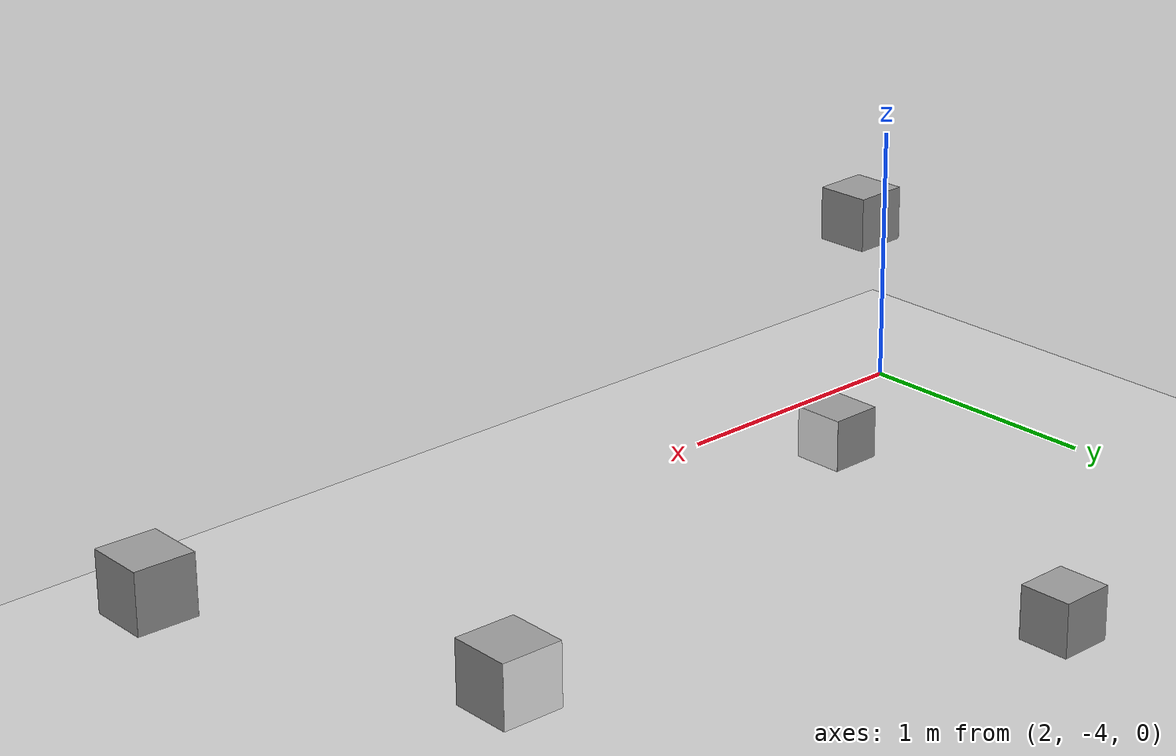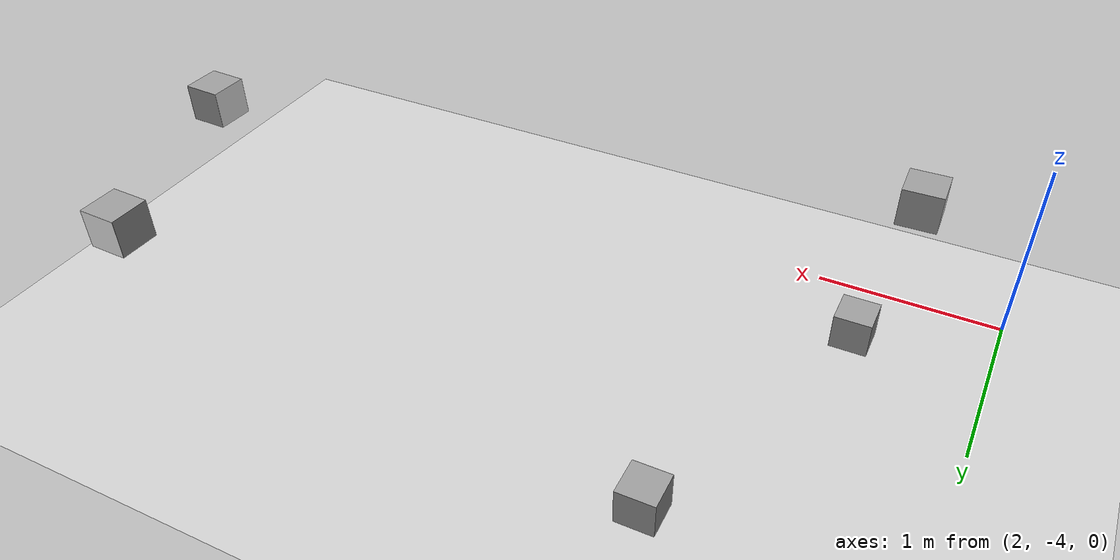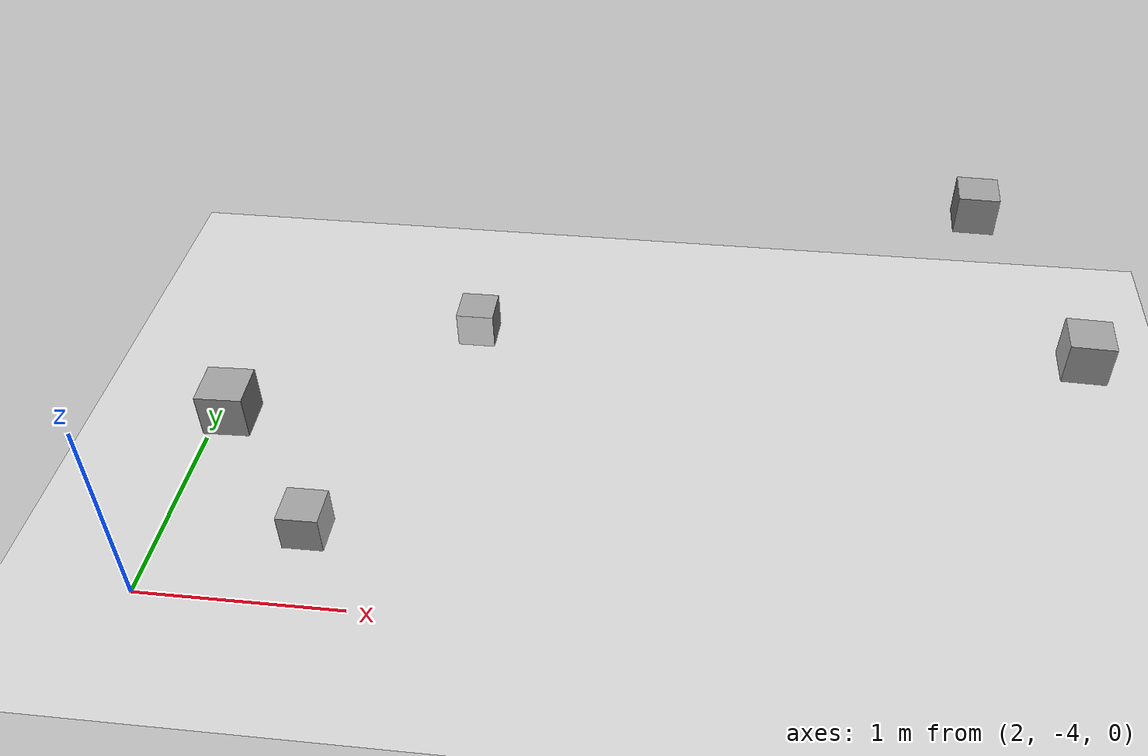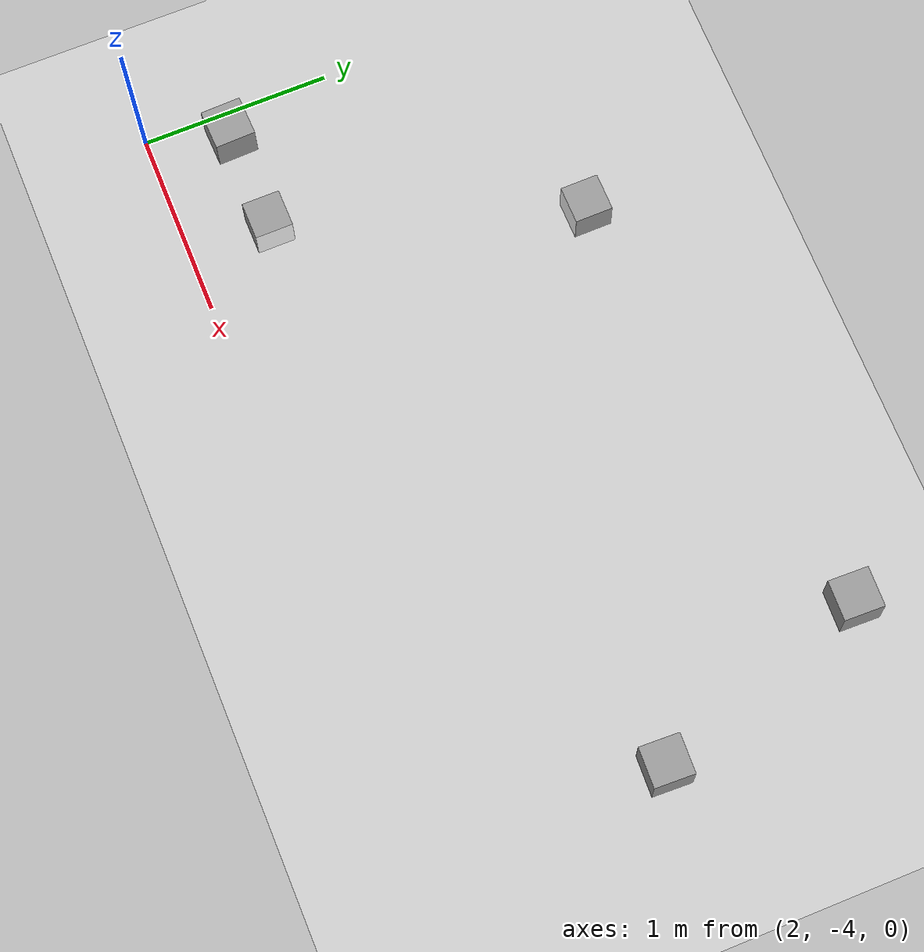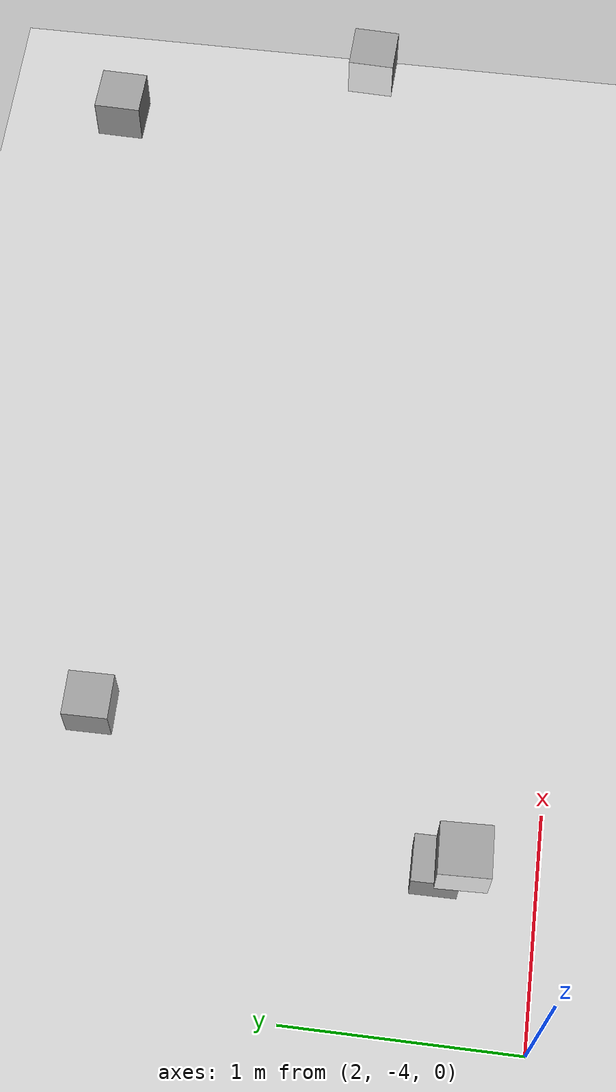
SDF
<sdf version="1.7">
 <world name="default">
  <model name="ground_plane">
   <static>1</static>
   <link name="link">
    <collision name="collision">
     <geometry><plane><normal>0 0 1</normal><size>100 100</size></plane></geometry>
     <surface>
      <contact><collide_bitmask>65535</collide_bitmask></contact>
      <friction><ode><mu>100</mu><mu2>50</mu2></ode></friction>
     </surface>
    </collision>
    <visual name="visual">
     <cast_shadows>0</cast_shadows>
     <geometry><plane><normal>0 0 1</normal><size>100 100</size></plane></geometry>
     <material>
      <script><uri>file://media/materials/scripts/gazebo.material</uri><name>Gazebo/Grey</name></script>
     </material>
    </visual>
   </link>
  </model>
  <model name="marker15_box">
   <link name="marker">
    <inertial>
     <mass>0.1</mass>
     <inertia><ixx>0</ixx><ixy>0</ixy><ixz>0</ixz><iyy>0</iyy><iyz>0</iyz><izz>0</izz></inertia>
    </inertial>
    <self_collide>1</self_collide>
    <pose>-0.76428 -0.101106 0.120004 -0.015494 1.56996 -0.015507</pose>
    <visual name="visual">
     <geometry><box><size>0.2 0.2 0.001</size></box></geometry>
     <material>
      <script>
       <uri>model://marker15/material/scripts</uri>
       <uri>model://marker15/material/textures</uri>
       <name>Aruco/marker15</name>
      </script>
      <shader type="pixel"><normal_map>__default__</normal_map></shader>
      <emissive>0 0 0 1</emissive>
      <ambient>1 1 1 1</ambient>
      <diffuse>1 1 1 1</diffuse>
      <specular>0 0 0 1</specular>
     </material>
    </visual>
    <collision name="collision">
     <geometry><box><size>0.2 0.2 0.02</size></box></geometry>
     <surface>
      <friction>
       <ode><mu>1</mu><mu2>1</mu2><fdir1>0 0 0</fdir1><slip1>0</slip1><slip2>0</slip2></ode>
       <torsional>
        <coefficient>1</coefficient>
        <patch_radius>0</patch_radius>
        <surface_radius>0</surface_radius>
        <use_patch_radius>1</use_patch_radius>
        <ode><slip>0</slip></ode>
       </torsional>
      </friction>
      <bounce><restitution_coefficient>0</restitution_coefficient><threshold>1e+06</threshold></bounce>
      <contact>
       <collide_without_contact>0</collide_without_contact>
       <collide_without_contact_bitmask>1</collide_without_contact_bitmask>
       <collide_bitmask>1</collide_bitmask>
       <ode>
        <soft_cfm>0</soft_cfm>
        <soft_erp>0.2</soft_erp>
        <kp>1e+13</kp>
        <kd>1</kd>
        <max_vel>0.01</max_vel>
        <min_depth>0</min_depth>
       </ode>
       <bullet>
        <split_impulse>1</split_impulse>
        <split_impulse_penetration_threshold>-0.01</split_impulse_penetration_threshold>
        <soft_cfm>0</soft_cfm>
        <soft_erp>0.2</soft_erp>
        <kp>1e+13</kp>
        <kd>1</kd>
       </bullet>
      </contact>
     </surface>
    </collision>
   </link>
   <link name="link_1">
    <inertial>
     <mass>1</mass>
     <inertia>
      <ixx>0.166667</ixx>
      <ixy>0</ixy>
      <ixz>0</ixz>
      <iyy>0.166667</iyy>
      <iyz>0</iyz>
      <izz>0.166667</izz>
     </inertia>
    </inertial>
    <pose>-0.86428 -0.101106 0.12 -1.3e-05 -4.2e-05 0</pose>
    <visual name="visual">
     <geometry><box><size>0.2 0.2 0.2</size></box></geometry>
     <material>
      <lighting>1</lighting>
      <script><uri>file://media/materials/scripts/gazebo.material</uri><name>Gazebo/Grey</name></script>
      <shader type="pixel"><normal_map>__default__</normal_map></shader>
      <emissive>0 0 0 1</emissive>
      <ambient>0.3 0.3 0.3 1</ambient>
      <diffuse>0.7 0.7 0.7 1</diffuse>
      <specular>0.01 0.01 0.01 1</specular>
     </material>
    </visual>
    <collision name="collision">
     <geometry><box><size>0.2 0.2 0.2</size></box></geometry>
     <surface>
      <friction>
       <ode><mu>1</mu><mu2>1</mu2><fdir1>0 0 0</fdir1><slip1>0</slip1><slip2>0</slip2></ode>
       <torsional>
        <coefficient>1</coefficient>
        <patch_radius>0</patch_radius>
        <surface_radius>0</surface_radius>
        <use_patch_radius>1</use_patch_radius>
        <ode><slip>0</slip></ode>
       </torsional>
      </friction>
      <bounce><restitution_coefficient>0</restitution_coefficient><threshold>1e+06</threshold></bounce>
      <contact>
       <collide_without_contact>0</collide_without_contact>
       <collide_without_contact_bitmask>1</collide_without_contact_bitmask>
       <collide_bitmask>1</collide_bitmask>
       <ode>
        <soft_cfm>0</soft_cfm>
        <soft_erp>0.2</soft_erp>
        <kp>1e+13</kp>
        <kd>1</kd>
        <max_vel>0.01</max_vel>
        <min_depth>0</min_depth>
       </ode>
       <bullet>
        <split_impulse>1</split_impulse>
        <split_impulse_penetration_threshold>-0.01</split_impulse_penetration_threshold>
        <soft_cfm>0</soft_cfm>
        <soft_erp>0.2</soft_erp>
        <kp>1e+13</kp>
        <kd>1</kd>
       </bullet>
      </contact>
     </surface>
    </collision>
   </link>
   <joint name="link_1_JOINT_3" type="fixed">
    <parent>link_1</parent>
    <child>marker</child>
    <physics>
     <ode><limit><cfm>0</cfm><erp>0.2</erp></limit><suspension><cfm>0</cfm><erp>0.2</erp></suspension></ode>
    </physics>
   </joint>
   <static>0</static>
   <pose>3.34071 -2.89188 -0.020009 1.4e-05 1.8e-05 -1.56314</pose>
  </model>
  <model name="marker24_box">
   <link name="marker">
    <inertial>
     <mass>0.1</mass>
     <inertia><ixx>0</ixx><ixy>0</ixy><ixz>0</ixz><iyy>0</iyy><iyz>0</iyz><izz>0</izz></inertia>
    </inertial>
    <self_collide>1</self_collide>
    <pose>-0.76428 -0.101106 0.120004 -0.015494 1.56996 -0.015507</pose>
    <visual name="visual">
     <geometry><box><size>0.2 0.2 0.001</size></box></geometry>
     <material>
      <script>
       <uri>model://marker24/material/scripts</uri>
       <uri>model://marker24/material/textures</uri>
       <name>Aruco/marker24</name>
      </script>
      <shader type="pixel"><normal_map>__default__</normal_map></shader>
      <emissive>0 0 0 1</emissive>
      <ambient>1 1 1 1</ambient>
      <diffuse>1 1 1 1</diffuse>
      <specular>0 0 0 1</specular>
     </material>
    </visual>
    <collision name="collision">
     <geometry><box><size>0.2 0.2 0.02</size></box></geometry>
     <surface>
      <friction>
       <ode><mu>1</mu><mu2>1</mu2><fdir1>0 0 0</fdir1><slip1>0</slip1><slip2>0</slip2></ode>
       <torsional>
        <coefficient>1</coefficient>
        <patch_radius>0</patch_radius>
        <surface_radius>0</surface_radius>
        <use_patch_radius>1</use_patch_radius>
        <ode><slip>0</slip></ode>
       </torsional>
      </friction>
      <bounce><restitution_coefficient>0</restitution_coefficient><threshold>1e+06</threshold></bounce>
      <contact>
       <collide_without_contact>0</collide_without_contact>
       <collide_without_contact_bitmask>1</collide_without_contact_bitmask>
       <collide_bitmask>1</collide_bitmask>
       <ode>
        <soft_cfm>0</soft_cfm>
        <soft_erp>0.2</soft_erp>
        <kp>1e+13</kp>
        <kd>1</kd>
        <max_vel>0.01</max_vel>
        <min_depth>0</min_depth>
       </ode>
       <bullet>
        <split_impulse>1</split_impulse>
        <split_impulse_penetration_threshold>-0.01</split_impulse_penetration_threshold>
        <soft_cfm>0</soft_cfm>
        <soft_erp>0.2</soft_erp>
        <kp>1e+13</kp>
        <kd>1</kd>
       </bullet>
      </contact>
     </surface>
    </collision>
   </link>
   <link name="link_1">
    <inertial>
     <mass>1</mass>
     <inertia>
      <ixx>0.166667</ixx>
      <ixy>0</ixy>
      <ixz>0</ixz>
      <iyy>0.166667</iyy>
      <iyz>0</iyz>
      <izz>0.166667</izz>
     </inertia>
    </inertial>
    <pose>-0.86428 -0.101106 0.12 -1.3e-05 -4.2e-05 0</pose>
    <visual name="visual">
     <geometry><box><size>0.2 0.2 0.2</size></box></geometry>
     <material>
      <lighting>1</lighting>
      <script><uri>file://media/materials/scripts/gazebo.material</uri><name>Gazebo/Grey</name></script>
      <shader type="pixel"><normal_map>__default__</normal_map></shader>
      <emissive>0 0 0 1</emissive>
      <ambient>0.3 0.3 0.3 1</ambient>
      <diffuse>0.7 0.7 0.7 1</diffuse>
      <specular>0.01 0.01 0.01 1</specular>
     </material>
    </visual>
    <collision name="collision">
     <geometry><box><size>0.2 0.2 0.2</size></box></geometry>
     <surface>
      <friction>
       <ode><mu>1</mu><mu2>1</mu2><fdir1>0 0 0</fdir1><slip1>0</slip1><slip2>0</slip2></ode>
       <torsional>
        <coefficient>1</coefficient>
        <patch_radius>0</patch_radius>
        <surface_radius>0</surface_radius>
        <use_patch_radius>1</use_patch_radius>
        <ode><slip>0</slip></ode>
       </torsional>
      </friction>
      <bounce><restitution_coefficient>0</restitution_coefficient><threshold>1e+06</threshold></bounce>
      <contact>
       <collide_without_contact>0</collide_without_contact>
       <collide_without_contact_bitmask>1</collide_without_contact_bitmask>
       <collide_bitmask>1</collide_bitmask>
       <ode>
        <soft_cfm>0</soft_cfm>
        <soft_erp>0.2</soft_erp>
        <kp>1e+13</kp>
        <kd>1</kd>
        <max_vel>0.01</max_vel>
        <min_depth>0</min_depth>
       </ode>
       <bullet>
        <split_impulse>1</split_impulse>
        <split_impulse_penetration_threshold>-0.01</split_impulse_penetration_threshold>
        <soft_cfm>0</soft_cfm>
        <soft_erp>0.2</soft_erp>
        <kp>1e+13</kp>
        <kd>1</kd>
       </bullet>
      </contact>
     </surface>
    </collision>
   </link>
   <joint name="link_1_JOINT_3" type="fixed">
    <parent>link_1</parent>
    <child>marker</child>
    <physics>
     <ode><limit><cfm>0</cfm><erp>0.2</erp></limit><suspension><cfm>0</cfm><erp>0.2</erp></suspension></ode>
    </physics>
   </joint>
   <static>0</static>
   <pose>1.66198 -3.76766 0.779998 1.4e-05 1e-05 -3.11078</pose>
  </model>
  <model name="marker25_box">
   <link name="marker">
    <inertial>
     <mass>0.1</mass>
     <inertia><ixx>0</ixx><ixy>0</ixy><ixz>0</ixz><iyy>0</iyy><iyz>0</iyz><izz>0</izz></inertia>
    </inertial>
    <self_collide>1</self_collide>
    <pose>-0.76428 -0.101106 0.120004 -0.015494 1.56996 -0.015507</pose>
    <visual name="visual">
     <geometry><box><size>0.2 0.2 0.001</size></box></geometry>
     <material>
      <script>
       <uri>model://marker25/material/scripts</uri>
       <uri>model://marker25/material/textures</uri>
       <name>Aruco/marker25</name>
      </script>
      <shader type="pixel"><normal_map>__default__</normal_map></shader>
      <emissive>0 0 0 1</emissive>
      <ambient>1 1 1 1</ambient>
      <diffuse>1 1 1 1</diffuse>
      <specular>0 0 0 1</specular>
     </material>
    </visual>
    <collision name="collision">
     <geometry><box><size>0.2 0.2 0.02</size></box></geometry>
     <surface>
      <friction>
       <ode><mu>1</mu><mu2>1</mu2><fdir1>0 0 0</fdir1><slip1>0</slip1><slip2>0</slip2></ode>
       <torsional>
        <coefficient>1</coefficient>
        <patch_radius>0</patch_radius>
        <surface_radius>0</surface_radius>
        <use_patch_radius>1</use_patch_radius>
        <ode><slip>0</slip></ode>
       </torsional>
      </friction>
      <bounce><restitution_coefficient>0</restitution_coefficient><threshold>1e+06</threshold></bounce>
      <contact>
       <collide_without_contact>0</collide_without_contact>
       <collide_without_contact_bitmask>1</collide_without_contact_bitmask>
       <collide_bitmask>1</collide_bitmask>
       <ode>
        <soft_cfm>0</soft_cfm>
        <soft_erp>0.2</soft_erp>
        <kp>1e+13</kp>
        <kd>1</kd>
        <max_vel>0.01</max_vel>
        <min_depth>0</min_depth>
       </ode>
       <bullet>
        <split_impulse>1</split_impulse>
        <split_impulse_penetration_threshold>-0.01</split_impulse_penetration_threshold>
        <soft_cfm>0</soft_cfm>
        <soft_erp>0.2</soft_erp>
        <kp>1e+13</kp>
        <kd>1</kd>
       </bullet>
      </contact>
     </surface>
    </collision>
   </link>
   <link name="link_1">
    <inertial>
     <mass>1</mass>
     <inertia>
      <ixx>0.166667</ixx>
      <ixy>0</ixy>
      <ixz>0</ixz>
      <iyy>0.166667</iyy>
      <iyz>0</iyz>
      <izz>0.166667</izz>
     </inertia>
    </inertial>
    <pose>-0.86428 -0.101106 0.12 -1.3e-05 -4.2e-05 0</pose>
    <visual name="visual">
     <geometry><box><size>0.2 0.2 0.2</size></box></geometry>
     <material>
      <lighting>1</lighting>
      <script><uri>file://media/materials/scripts/gazebo.material</uri><name>Gazebo/Grey</name></script>
      <shader type="pixel"><normal_map>__default__</normal_map></shader>
      <emissive>0 0 0 1</emissive>
      <ambient>0.3 0.3 0.3 1</ambient>
      <diffuse>0.7 0.7 0.7 1</diffuse>
      <specular>0.01 0.01 0.01 1</specular>
     </material>
    </visual>
    <collision name="collision">
     <geometry><box><size>0.2 0.2 0.2</size></box></geometry>
     <surface>
      <friction>
       <ode><mu>1</mu><mu2>1</mu2><fdir1>0 0 0</fdir1><slip1>0</slip1><slip2>0</slip2></ode>
       <torsional>
        <coefficient>1</coefficient>
        <patch_radius>0</patch_radius>
        <surface_radius>0</surface_radius>
        <use_patch_radius>1</use_patch_radius>
        <ode><slip>0</slip></ode>
       </torsional>
      </friction>
      <bounce><restitution_coefficient>0</restitution_coefficient><threshold>1e+06</threshold></bounce>
      <contact>
       <collide_without_contact>0</collide_without_contact>
       <collide_without_contact_bitmask>1</collide_without_contact_bitmask>
       <collide_bitmask>1</collide_bitmask>
       <ode>
        <soft_cfm>0</soft_cfm>
        <soft_erp>0.2</soft_erp>
        <kp>1e+13</kp>
        <kd>1</kd>
        <max_vel>0.01</max_vel>
        <min_depth>0</min_depth>
       </ode>
       <bullet>
        <split_impulse>1</split_impulse>
        <split_impulse_penetration_threshold>-0.01</split_impulse_penetration_threshold>
        <soft_cfm>0</soft_cfm>
        <soft_erp>0.2</soft_erp>
        <kp>1e+13</kp>
        <kd>1</kd>
       </bullet>
      </contact>
     </surface>
    </collision>
   </link>
   <joint name="link_1_JOINT_3" type="fixed">
    <parent>link_1</parent>
    <child>marker</child>
    <physics>
     <ode><limit><cfm>0</cfm><erp>0.2</erp></limit><suspension><cfm>0</cfm><erp>0.2</erp></suspension></ode>
    </physics>
   </joint>
   <static>0</static>
   <pose>3.56437 -3.46404 -0.020008 3e-06 1.8e-05 0.005639</pose>
  </model>
  <model name="marker32_box">
   <link name="marker">
    <inertial>
     <mass>0.1</mass>
     <inertia><ixx>0</ixx><ixy>0</ixy><ixz>0</ixz><iyy>0</iyy><iyz>0</iyz><izz>0</izz></inertia>
    </inertial>
    <self_collide>1</self_collide>
    <pose>-0.76428 -0.101106 0.120004 -0.015494 1.56996 -0.015507</pose>
    <visual name="visual">
     <geometry><box><size>0.2 0.2 0.001</size></box></geometry>
     <material>
      <script>
       <uri>model://marker32/material/scripts</uri>
       <uri>model://marker32/material/textures</uri>
       <name>Aruco/marker32</name>
      </script>
      <shader type="pixel"><normal_map>__default__</normal_map></shader>
      <emissive>0 0 0 1</emissive>
      <ambient>1 1 1 1</ambient>
      <diffuse>1 1 1 1</diffuse>
      <specular>0 0 0 1</specular>
     </material>
    </visual>
    <collision name="collision">
     <geometry><box><size>0.2 0.2 0.02</size></box></geometry>
     <surface>
      <friction>
       <ode><mu>1</mu><mu2>1</mu2><fdir1>0 0 0</fdir1><slip1>0</slip1><slip2>0</slip2></ode>
       <torsional>
        <coefficient>1</coefficient>
        <patch_radius>0</patch_radius>
        <surface_radius>0</surface_radius>
        <use_patch_radius>1</use_patch_radius>
        <ode><slip>0</slip></ode>
       </torsional>
      </friction>
      <bounce><restitution_coefficient>0</restitution_coefficient><threshold>1e+06</threshold></bounce>
      <contact>
       <collide_without_contact>0</collide_without_contact>
       <collide_without_contact_bitmask>1</collide_without_contact_bitmask>
       <collide_bitmask>1</collide_bitmask>
       <ode>
        <soft_cfm>0</soft_cfm>
        <soft_erp>0.2</soft_erp>
        <kp>1e+13</kp>
        <kd>1</kd>
        <max_vel>0.01</max_vel>
        <min_depth>0</min_depth>
       </ode>
       <bullet>
        <split_impulse>1</split_impulse>
        <split_impulse_penetration_threshold>-0.01</split_impulse_penetration_threshold>
        <soft_cfm>0</soft_cfm>
        <soft_erp>0.2</soft_erp>
        <kp>1e+13</kp>
        <kd>1</kd>
       </bullet>
      </contact>
     </surface>
    </collision>
   </link>
   <link name="link_1">
    <inertial>
     <mass>1</mass>
     <inertia>
      <ixx>0.166667</ixx>
      <ixy>0</ixy>
      <ixz>0</ixz>
      <iyy>0.166667</iyy>
      <iyz>0</iyz>
      <izz>0.166667</izz>
     </inertia>
    </inertial>
    <pose>-0.86428 -0.101106 0.12 -1.3e-05 -4.2e-05 0</pose>
    <visual name="visual">
     <geometry><box><size>0.2 0.2 0.2</size></box></geometry>
     <material>
      <lighting>1</lighting>
      <script><uri>file://media/materials/scripts/gazebo.material</uri><name>Gazebo/Grey</name></script>
      <shader type="pixel"><normal_map>__default__</normal_map></shader>
      <emissive>0 0 0 1</emissive>
      <ambient>0.3 0.3 0.3 1</ambient>
      <diffuse>0.7 0.7 0.7 1</diffuse>
      <specular>0.01 0.01 0.01 1</specular>
     </material>
    </visual>
    <collision name="collision">
     <geometry><box><size>0.2 0.2 0.2</size></box></geometry>
     <surface>
      <friction>
       <ode><mu>1</mu><mu2>1</mu2><fdir1>0 0 0</fdir1><slip1>0</slip1><slip2>0</slip2></ode>
       <torsional>
        <coefficient>1</coefficient>
        <patch_radius>0</patch_radius>
        <surface_radius>0</surface_radius>
        <use_patch_radius>1</use_patch_radius>
        <ode><slip>0</slip></ode>
       </torsional>
      </friction>
      <bounce><restitution_coefficient>0</restitution_coefficient><threshold>1e+06</threshold></bounce>
      <contact>
       <collide_without_contact>0</collide_without_contact>
       <collide_without_contact_bitmask>1</collide_without_contact_bitmask>
       <collide_bitmask>1</collide_bitmask>
       <ode>
        <soft_cfm>0</soft_cfm>
        <soft_erp>0.2</soft_erp>
        <kp>1e+13</kp>
        <kd>1</kd>
        <max_vel>0.01</max_vel>
        <min_depth>0</min_depth>
       </ode>
       <bullet>
        <split_impulse>1</split_impulse>
        <split_impulse_penetration_threshold>-0.01</split_impulse_penetration_threshold>
        <soft_cfm>0</soft_cfm>
        <soft_erp>0.2</soft_erp>
        <kp>1e+13</kp>
        <kd>1</kd>
       </bullet>
      </contact>
     </surface>
    </collision>
   </link>
   <joint name="link_1_JOINT_3" type="fixed">
    <parent>link_1</parent>
    <child>marker</child>
    <physics>
     <ode><limit><cfm>0</cfm><erp>0.2</erp></limit><suspension><cfm>0</cfm><erp>0.2</erp></suspension></ode>
    </physics>
   </joint>
   <static>0</static>
   <pose>5.32169 -2.98009 0.779958 2e-05 4.1e-05 3.10382</pose>
  </model>
  <model name="marker33_box">
   <link name="marker">
    <inertial>
     <mass>0.1</mass>
     <inertia><ixx>0</ixx><ixy>0</ixy><ixz>0</ixz><iyy>0</iyy><iyz>0</iyz><izz>0</izz></inertia>
    </inertial>
    <self_collide>1</self_collide>
    <pose>-0.76428 -0.101106 0.120004 -0.015494 1.56996 -0.015507</pose>
    <visual name="visual">
     <geometry><box><size>0.2 0.2 0.001</size></box></geometry>
     <material>
      <script>
       <uri>model://marker33/material/scripts</uri>
       <uri>model://marker33/material/textures</uri>
       <name>Aruco/marker33</name>
      </script>
      <shader type="pixel"><normal_map>__default__</normal_map></shader>
      <emissive>0 0 0 1</emissive>
      <ambient>1 1 1 1</ambient>
      <diffuse>1 1 1 1</diffuse>
      <specular>0 0 0 1</specular>
     </material>
    </visual>
    <collision name="collision">
     <geometry><box><size>0.2 0.2 0.02</size></box></geometry>
     <surface>
      <friction>
       <ode><mu>1</mu><mu2>1</mu2><fdir1>0 0 0</fdir1><slip1>0</slip1><slip2>0</slip2></ode>
       <torsional>
        <coefficient>1</coefficient>
        <patch_radius>0</patch_radius>
        <surface_radius>0</surface_radius>
        <use_patch_radius>1</use_patch_radius>
        <ode><slip>0</slip></ode>
       </torsional>
      </friction>
      <bounce><restitution_coefficient>0</restitution_coefficient><threshold>1e+06</threshold></bounce>
      <contact>
       <collide_without_contact>0</collide_without_contact>
       <collide_without_contact_bitmask>1</collide_without_contact_bitmask>
       <collide_bitmask>1</collide_bitmask>
       <ode>
        <soft_cfm>0</soft_cfm>
        <soft_erp>0.2</soft_erp>
        <kp>1e+13</kp>
        <kd>1</kd>
        <max_vel>0.01</max_vel>
        <min_depth>0</min_depth>
       </ode>
       <bullet>
        <split_impulse>1</split_impulse>
        <split_impulse_penetration_threshold>-0.01</split_impulse_penetration_threshold>
        <soft_cfm>0</soft_cfm>
        <soft_erp>0.2</soft_erp>
        <kp>1e+13</kp>
        <kd>1</kd>
       </bullet>
      </contact>
     </surface>
    </collision>
   </link>
   <link name="link_1">
    <inertial>
     <mass>1</mass>
     <inertia>
      <ixx>0.166667</ixx>
      <ixy>0</ixy>
      <ixz>0</ixz>
      <iyy>0.166667</iyy>
      <iyz>0</iyz>
      <izz>0.166667</izz>
     </inertia>
    </inertial>
    <pose>-0.86428 -0.101106 0.12 -1.3e-05 -4.2e-05 0</pose>
    <visual name="visual">
     <geometry><box><size>0.2 0.2 0.2</size></box></geometry>
     <material>
      <lighting>1</lighting>
      <script><uri>file://media/materials/scripts/gazebo.material</uri><name>Gazebo/Grey</name></script>
      <shader type="pixel"><normal_map>__default__</normal_map></shader>
      <emissive>0 0 0 1</emissive>
      <ambient>0.3 0.3 0.3 1</ambient>
      <diffuse>0.7 0.7 0.7 1</diffuse>
      <specular>0.01 0.01 0.01 1</specular>
     </material>
    </visual>
    <collision name="collision">
     <geometry><box><size>0.2 0.2 0.2</size></box></geometry>
     <surface>
      <friction>
       <ode><mu>1</mu><mu2>1</mu2><fdir1>0 0 0</fdir1><slip1>0</slip1><slip2>0</slip2></ode>
       <torsional>
        <coefficient>1</coefficient>
        <patch_radius>0</patch_radius>
        <surface_radius>0</surface_radius>
        <use_patch_radius>1</use_patch_radius>
        <ode><slip>0</slip></ode>
       </torsional>
      </friction>
      <bounce><restitution_coefficient>0</restitution_coefficient><threshold>1e+06</threshold></bounce>
      <contact>
       <collide_without_contact>0</collide_without_contact>
       <collide_without_contact_bitmask>1</collide_without_contact_bitmask>
       <collide_bitmask>1</collide_bitmask>
       <ode>
        <soft_cfm>0</soft_cfm>
        <soft_erp>0.2</soft_erp>
        <kp>1e+13</kp>
        <kd>1</kd>
        <max_vel>0.01</max_vel>
        <min_depth>0</min_depth>
       </ode>
       <bullet>
        <split_impulse>1</split_impulse>
        <split_impulse_penetration_threshold>-0.01</split_impulse_penetration_threshold>
        <soft_cfm>0</soft_cfm>
        <soft_erp>0.2</soft_erp>
        <kp>1e+13</kp>
        <kd>1</kd>
       </bullet>
      </contact>
     </surface>
    </collision>
   </link>
   <joint name="link_1_JOINT_3" type="fixed">
    <parent>link_1</parent>
    <child>marker</child>
    <physics>
     <ode><limit><cfm>0</cfm><erp>0.2</erp></limit><suspension><cfm>0</cfm><erp>0.2</erp></suspension></ode>
    </physics>
   </joint>
   <static>0</static>
   <pose>5.73142 -0.941845 0.779968 1.2e-05 3.8e-05 1.54257</pose>
  </model>
 </world>
</sdf>
